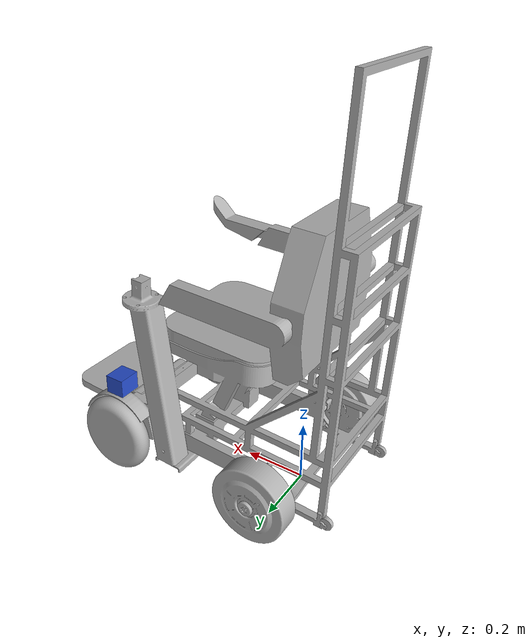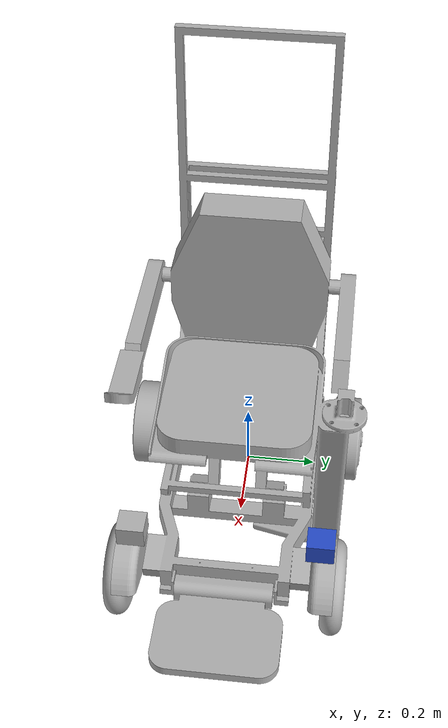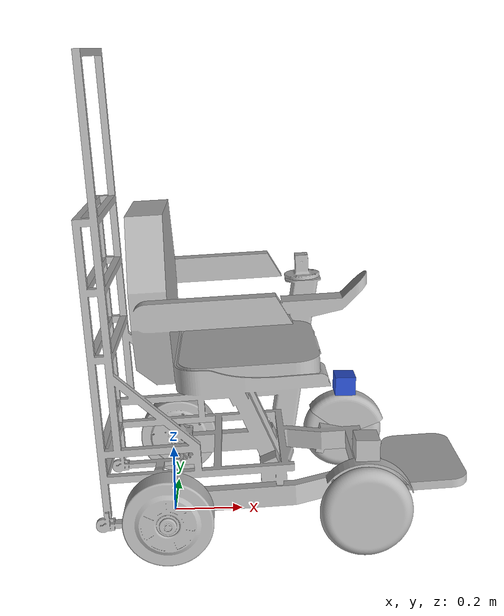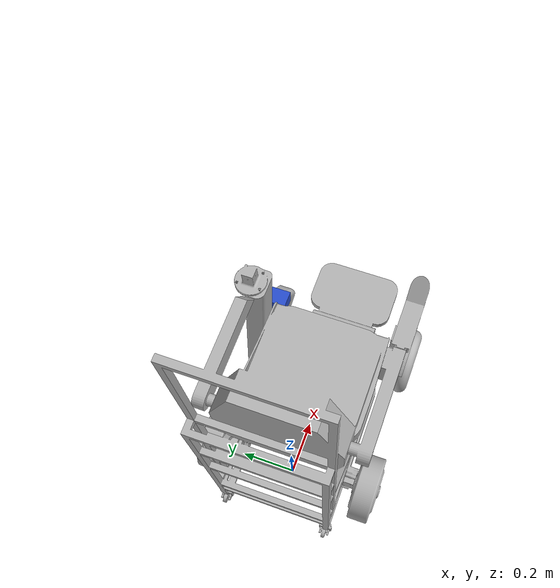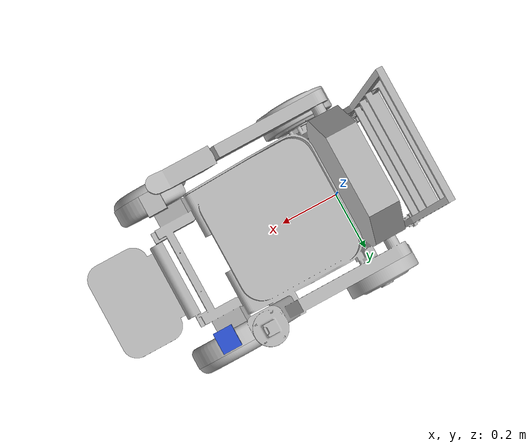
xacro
<?xml version="1.0" ?>
<robot name="wheelchair" xmlns:xacro="http://www.ros.org/wiki/xacro">

<xacro:include filename="$(find wheelchair_description)/urdf/materials.xacro" />
<xacro:include filename="$(find wheelchair_description)/urdf/wheelchair.trans" />
<xacro:include filename="$(find wheelchair_description)/urdf/wheelchair.gazebo" />

<link name="base_link">
  <inertial>
    <origin xyz="0 0 0" rpy="0 0 0"/>
    <mass value="332.01068376069776"/>
    <inertia ixx="28.453256" iyy="23.493643" izz="18.780017" ixy="0.242673" iyz="-7.755885" ixz="0.389285"/>
  </inertial>
  <visual>
    <origin xyz="0 0 0" rpy="0 0 0"/>
    <geometry>
      <mesh filename="package://wheelchair_description/meshes/base_fixed.stl" scale="0.001 0.001 0.001"/>
    </geometry>
    <material name="silver"/>
  </visual>
  <collision>
    <origin xyz="0 0 0" rpy="0 0 0"/>
    <geometry>
      <mesh filename="package://wheelchair_description/meshes/base_fixed.stl" scale="0.001 0.001 0.001"/>
    </geometry>
  </collision>
</link>

<link name="lip_1">
  <inertial>
    <origin xyz="0 0 0" rpy="0 0 0"/>
    <mass value="18.27800057815573"/>
    <inertia ixx="0.124422" iyy="0.14266" izz="0.263549" ixy="0.0" iyz="0.001029" ixz="-0.0"/>
  </inertial>
  <visual>
    <origin xyz="0 0 0" rpy="0 0 0"/>
    <geometry>
      <mesh filename="package://wheelchair_description/meshes/lip_1.stl" scale="0.001 0.001 0.001"/>
    </geometry>
    <material name="silver"/>
  </visual>
  <collision>
    <origin xyz="0 0 0" rpy="0 0 0"/>
    <geometry>
      <mesh filename="package://wheelchair_description/meshes/lip_1.stl" scale="0.001 0.001 0.001"/>
    </geometry>
  </collision>
</link>

<link name="front_right_1">
  <inertial>
    <origin xyz="0 0 0" rpy="0 0 0"/>
    <mass value="21.702165340628166"/>
    <inertia ixx="0.161714" iyy="0.086752" izz="0.086752" ixy="0.0" iyz="-0.0" ixz="-0.0"/>
  </inertial>
  <visual>
    <origin xyz="0 0 0" rpy="0 0 0"/>
    <geometry>
      <mesh filename="package://wheelchair_description/meshes/front.stl" scale="0.001 0.001 0.001"/>
    </geometry>
    <material name="silver"/>
  </visual>
  <collision>
    <origin xyz="0 0 0" rpy="0 0 0"/>
    <geometry>
      <mesh filename="package://wheelchair_description/meshes/front.stl" scale="0.001 0.001 0.001"/>
    </geometry>
  </collision>
</link>

<link name="front_left_1">
  <inertial>
    <origin xyz="0 0 0" rpy="0 0 3.14159"/>
    <mass value="21.702165340628156"/>
    <inertia ixx="0.161714" iyy="0.086752" izz="0.086752" ixy="-0.0" iyz="-0.0" ixz="0.0"/>
  </inertial>
  <visual>
    <origin xyz="0 0 0" rpy="0 0 3.14159"/>
    <geometry>
      <mesh filename="package://wheelchair_description/meshes/front.stl" scale="0.001 0.001 0.001"/>
    </geometry>
    <material name="silver"/>
  </visual>
  <collision>
    <origin xyz="0 0 0" rpy="0 0 3.14159"/>
    <geometry>
      <mesh filename="package://wheelchair_description/meshes/front.stl" scale="0.001 0.001 0.001"/>
    </geometry>
  </collision>
</link>

<link name="back_right_1">
  <inertial>
    <origin xyz="0 0 0" rpy="0 0 0"/>
    <mass value="17.247382273323833"/>
    <inertia ixx="0.169076" iyy="0.094827" izz="0.094827" ixy="1e-06" iyz="-1e-06" ixz="-1e-06"/>
  </inertial>
  <visual>
    <origin xyz="0 0 0" rpy="0 0 0"/>
    <geometry>
      <mesh filename="package://wheelchair_description/meshes/back.stl" scale="0.001 0.001 0.001"/>
    </geometry>
    <material name="silver"/>
  </visual>
  <collision>
    <origin xyz="0 0 0" rpy="0 0 0"/>
    <geometry>
      <mesh filename="package://wheelchair_description/meshes/back.stl" scale="0.001 0.001 0.001"/>
    </geometry>
  </collision>
</link>

<link name="back_left_1">
  <inertial>
    <origin xyz="0 0 0" rpy="0 0 3.14159"/>
    <mass value="17.247400849331317"/>
    <inertia ixx="0.169076" iyy="0.094827" izz="0.094827" ixy="-1e-06" iyz="-1e-06" ixz="1e-06"/>
  </inertial>
  <visual>
    <origin xyz="0 0 0" rpy="0 0 3.14159"/>
    <geometry>
      <mesh filename="package://wheelchair_description/meshes/back.stl" scale="0.001 0.001 0.001"/>
    </geometry>
    <material name="silver"/>
  </visual>
  <collision>
    <origin xyz="0 0 0" rpy="0 0 3.14159"/>
    <geometry>
      <mesh filename="package://wheelchair_description/meshes/back.stl" scale="0.001 0.001 0.001"/>
    </geometry>
  </collision>
</link>

  <link name="laser_left">
    <inertial>
      <origin xyz="0 0 0" />
      <mass value="1.0" />
      <inertia  ixx="1.0" ixy="0.0"  ixz="0.0"  iyy="100.0"  iyz="0.0"  izz="1.0" />
    </inertial>
    <visual>
      <origin xyz="0 0 0"/>
      <geometry>
        <box size="0.065 0.073 0.06" />
      </geometry>
    </visual>
    <collision>
      <origin xyz="0 0 0"/>
      <geometry>
        <box size="0.065 0.073 0.06" />
      </geometry>
    </collision>
  </link>
  <gazebo reference="laser_left">
    <material>Gazebo/Blue</material>
  </gazebo>

    <link name="laser_right">
    <inertial>
      <origin xyz="0 0 0" />
      <mass value="1.0" />
      <inertia  ixx="1.0" ixy="0.0"  ixz="0.0"  iyy="100.0"  iyz="0.0"  izz="1.0" />
    </inertial>
    <visual>
      <origin xyz="0 0 0"/>
      <geometry>
        <box size="0.065 0.073 0.06" />
      </geometry>
    </visual>
    <collision>
      <origin xyz="0 0 0"/>
      <geometry>
        <box size="0.065 0.073 0.06" />
      </geometry>
    </collision>
  </link>
  <gazebo reference="laser_left">
    <material>Gazebo/Blue</material>
  </gazebo>

<joint name="Lip_joint" type="fixed">
  <origin xyz="0.58288042351 -0.135  0.14078186452388763" rpy="0 0 0"/>
  <parent link="base_link"/>
  <child link="lip_1"/>
  <limit upper="1.570796" lower="0.0" effort="100" velocity="100"/>
</joint>

<joint name="FR_joint" type="fixed">
  <origin xyz="0.53412685915 -0.27255433797836304  0.12812547385692596" rpy="0 0 0"/>
  <parent link="base_link"/>
  <child link="front_right_1"/>
</joint>

<joint name="FL_joint" type="fixed">
  <origin xyz="0.53412685915 0.27255433797836304  0.12812547385692596" rpy="0 0 0"/>
  <parent link="base_link"/>
  <child link="front_left_1"/>
</joint>

<joint name="BR_joint" type="fixed">
  <origin xyz="0 -0.250498  0.12285605818033218" rpy="0 0 0"/>
  <parent link="base_link"/>
  <child link="back_right_1"/>
</joint>

<joint name="BL_joint" type="fixed">
  <origin xyz="0 0.250498  0.12285605818033218" rpy="0 0 0"/>
  <parent link="base_link"/>
  <child link="back_left_1"/>
</joint>

<joint name="lidar_left_joint" type="fixed">
  <origin xyz="0.53412685915 0.24555433797836304 0.30312547385692596" rpy="0 0 0"/>
  <parent link="base_link"/>
  <child link="laser_left"/>
</joint>

<joint name="lidar_right_joint" type="fixed">
  <origin xyz="0.53412685915  -0.24555433797836304 0.30312547385692596" rpy="0 0 0"/>
  <parent link="base_link"/>
  <child link="laser_right"/>
</joint>

</robot>

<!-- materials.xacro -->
<robot name="wheelchair" xmlns:xacro="http://www.ros.org/wiki/xacro" >

<material name="silver">
  <color rgba="0.700 0.700 0.700 1.000"/>
</material>

</robot>

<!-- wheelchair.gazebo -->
<robot name="wheelchair" xmlns:xacro="http://www.ros.org/wiki/xacro" >

<xacro:property name="body_color" value="Gazebo/Silver" />

<ros2_control name="GazeboSystem" type="system">
  <hardware>
    <plugin>gazebo_ros2_control/GazeboSystem</plugin>
  </hardware>
  <joint name="Revolute 1">
    <command_interface name="position">
      <param name="min">0.0</param>
      <param name="max">1.570796</param>
    </command_interface>
    <state_interface name="position"/>
    <state_interface name="velocity"/>
    <state_interface name="effort"/>
  </joint>
  <joint name="Revolute 2">
    <command_interface name="position"/>
    <state_interface name="position"/>
    <state_interface name="velocity"/>
    <state_interface name="effort"/>
  </joint>
  <joint name="Revolute 3">
    <command_interface name="position"/>
    <state_interface name="position"/>
    <state_interface name="velocity"/>
    <state_interface name="effort"/>
  </joint>
  <joint name="Revolute 4">
    <command_interface name="position"/>
    <state_interface name="position"/>
    <state_interface name="velocity"/>
    <state_interface name="effort"/>
  </joint>
  <joint name="Revolute 5">
    <command_interface name="position"/>
    <state_interface name="position"/>
    <state_interface name="velocity"/>
    <state_interface name="effort"/>
  </joint>
</ros2_control>

<gazebo>
  <plugin filename="libgazebo_ros2_control.so" name="gazebo_ros2_control">
    <parameters>$(find wheelchair_description)/launch/controller.yaml</parameters>
  </plugin>
</gazebo>

<gazebo reference="base_link">
  <material>${body_color}</material>
  <mu1>0.2</mu1>
  <mu2>0.2</mu2>
  <selfCollide>true</selfCollide>
  <gravity>true</gravity>
</gazebo>

<gazebo reference="lip_1">
  <material>${body_color}</material>
  <mu1>0.2</mu1>
  <mu2>0.2</mu2>
  <selfCollide>true</selfCollide>
</gazebo>

<gazebo reference="front_right_1">
  <material>${body_color}</material>
  <mu1>0.2</mu1>
  <mu2>0.2</mu2>
  <selfCollide>true</selfCollide>
</gazebo>

<gazebo reference="front_left_1">
  <material>${body_color}</material>
  <mu1>0.2</mu1>
  <mu2>0.2</mu2>
  <selfCollide>true</selfCollide>
</gazebo>

<gazebo reference="back_right_1">
  <material>${body_color}</material>
  <mu1>0.2</mu1>
  <mu2>0.2</mu2>
  <selfCollide>true</selfCollide>
</gazebo>

<gazebo reference="back_left_1">
  <material>${body_color}</material>
  <mu1>0.2</mu1>
  <mu2>0.2</mu2>
  <selfCollide>true</selfCollide>
</gazebo>

</robot>
